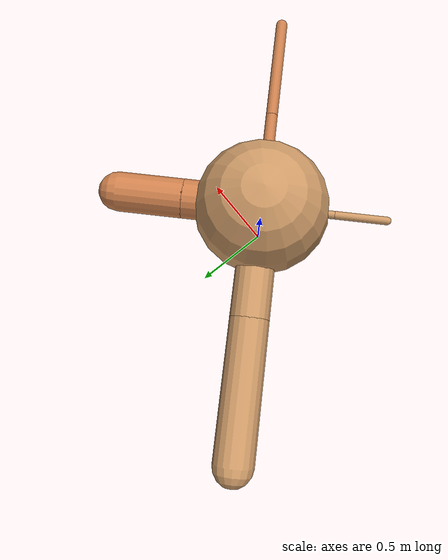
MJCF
<?xml version="1.0" ?>
<mujoco model="ant">

	<compiler angle="degree" coordinate="local" inertiafromgeom="true"/>

	<option integrator="RK4" timestep="0.01"/>

	<custom>

		<numeric data="0.0 0.0 0.55 1.0 0.0 0.0 0.0 0.0 1.0 0.0 -1.0 0.0 -1.0 0.0 1.0" name="init_qpos"/>

	</custom>

	<default>

		<joint armature="1" damping="1" limited="true"/>

		<geom conaffinity="0" condim="3" density="5.0" friction="1.5 0.1 0.1" margin="0.01" rgba="0.8 0.6 0.4 1"/>

	</default>

	<worldbody>

		<body name="torso" pos="0 0 0.75">

			<geom name="torso_geom" pos="0 0 0" size="0.4123856342503719" type="sphere"/>

			<!--joint armature="0" damping="0" limited="false" margin="0.01" name="root" pos="0 0 0" type="free"/-->

			<body name="front_left_leg" pos="0 0 0">

				<geom fromto="0 0 0 0.2 0.2 0" name="aux_1_geom" size="0.12271883930722809" type="capsule" rgba=".8 .5 .3 1"/>

				<body name="aux_1" pos="0.2 0.2 0">

					<joint axis="0 0 1" name="hip_1" pos="0.0 0.0 0.0" range="-40 40" type="hinge"/>

					<geom fromto="0 0 0 0.14106157886405088 0.14106157886405088 0" name="left_leg_geom" size="0.12271883930722809" type="capsule" rgba=".8 .5 .3 1"/>

					<body pos="0.14106157886405088 0.14106157886405088 0" name="front_left_foot">

						<joint axis="-1 1 0" name="ankle_1" pos="0.0 0.0 0.0" range="30 100" type="hinge"/>

						<geom fromto="0 0 0 0.28212315772810176 0.28212315772810176 0" name="left_ankle_geom" size="0.12271883930722809" type="capsule" rgba=".8 .5 .3 1"/>

					</body>

				</body>

			</body>

			<body name="front_right_leg" pos="0 0 0">

				<geom fromto="0 0 0 -0.2 0.2 0" name="aux_2_geom" size="0.11765501209303647" type="capsule"/>

				<body name="aux_2" pos="-0.2 0.2 0">

					<joint axis="0 0 1" name="hip_2" pos="0.0 0.0 0.0" range="-40 40" type="hinge"/>

					<geom fromto="0 0 0 -0.28063538877992095 0.28063538877992095 0" name="right_leg_geom" size="0.11765501209303647" type="capsule"/>

					<body pos="-0.28063538877992095 0.28063538877992095 0" name="front_right_foot">

						<joint axis="1 1 0" name="ankle_2" pos="0.0 0.0 0.0" range="-100 -30" type="hinge"/>

						<geom fromto="0 0 0 -0.5612707775598419 0.5612707775598419 0" name="right_ankle_geom" size="0.11765501209303647" type="capsule"/>

					</body>

				</body>

			</body>

			<body name="left_back_leg" pos="0 0 0">

				<geom fromto="0 0 0 -0.2 -0.2 0" name="aux_3_geom" size="0.025437550269407316" type="capsule"/>

				<body name="aux_3" pos="-0.2 -0.2 0">

					<joint axis="0 0 1" name="hip_3" pos="0.0 0.0 0.0" range="-40 40" type="hinge"/>

					<geom fromto="0 0 0 -0.11347343096672553 -0.11347343096672553 0" name="back_leg_geom" size="0.025437550269407316" type="capsule"/>

					<body pos="-0.11347343096672553 -0.11347343096672553 0" name="left_back_foot">

						<joint axis="-1 1 0" name="ankle_3" pos="0.0 0.0 0.0" range="-100 -30" type="hinge"/>

						<geom fromto="0 0 0 -0.22694686193345107 -0.22694686193345107 0" name="third_ankle_geom" size="0.025437550269407316" type="capsule"/>

					</body>

				</body>

			</body>

			<body name="right_back_leg" pos="0 0 0">

				<geom fromto="0 0 0 0.2 -0.2 0" name="aux_4_geom" size="0.037438242530363194" type="capsule" rgba=".8 .5 .3 1"/>

				<body name="aux_4" pos="0.2 -0.2 0">

					<joint axis="0 0 1" name="hip_4" pos="0.0 0.0 0.0" range="-40 40" type="hinge"/>

					<geom fromto="0 0 0 0.23608802398273543 -0.23608802398273543 0" name="rightback_leg_geom" size="0.037438242530363194" type="capsule" rgba=".8 .5 .3 1"/>

					<body pos="0.23608802398273543 -0.23608802398273543 0" name="right_back_foot">

						<joint axis="1 1 0" name="ankle_4" pos="0.0 0.0 0.0" range="30 100" type="hinge"/>

						<geom fromto="0 0 0 0.47217604796547086 -0.47217604796547086 0" name="fourth_ankle_geom" size="0.037438242530363194" type="capsule" rgba=".8 .5 .3 1"/>

					</body>

				</body>

			</body>

		</body>

	</worldbody>

	<actuator>

		<motor ctrllimited="true" ctrlrange="-1.0 1.0" joint="hip_4" gear="150"/>

		<motor ctrllimited="true" ctrlrange="-1.0 1.0" joint="ankle_4" gear="150"/>

		<motor ctrllimited="true" ctrlrange="-1.0 1.0" joint="hip_1" gear="150"/>

		<motor ctrllimited="true" ctrlrange="-1.0 1.0" joint="ankle_1" gear="150"/>

		<motor ctrllimited="true" ctrlrange="-1.0 1.0" joint="hip_2" gear="150"/>

		<motor ctrllimited="true" ctrlrange="-1.0 1.0" joint="ankle_2" gear="150"/>

		<motor ctrllimited="true" ctrlrange="-1.0 1.0" joint="hip_3" gear="150"/>

		<motor ctrllimited="true" ctrlrange="-1.0 1.0" joint="ankle_3" gear="150"/>

	</actuator>

</mujoco>
